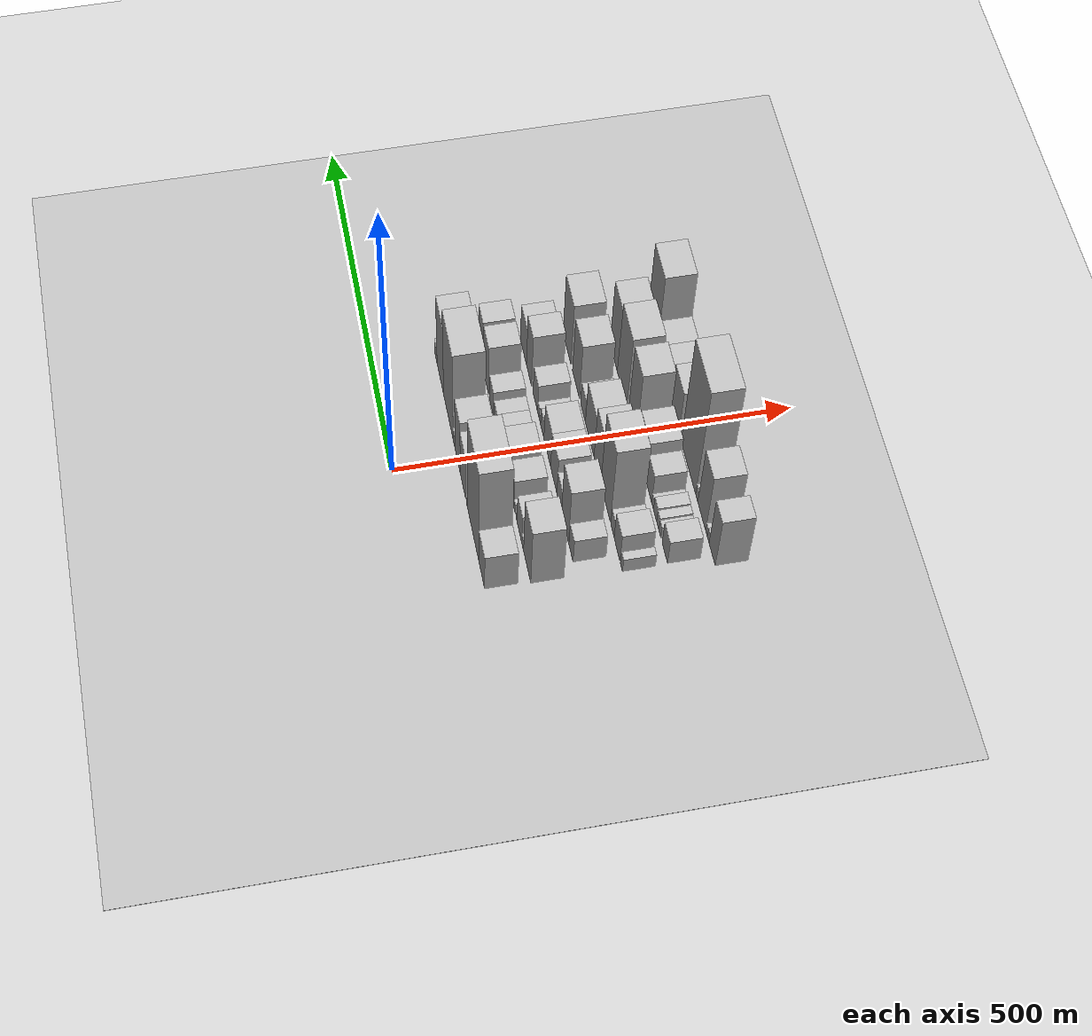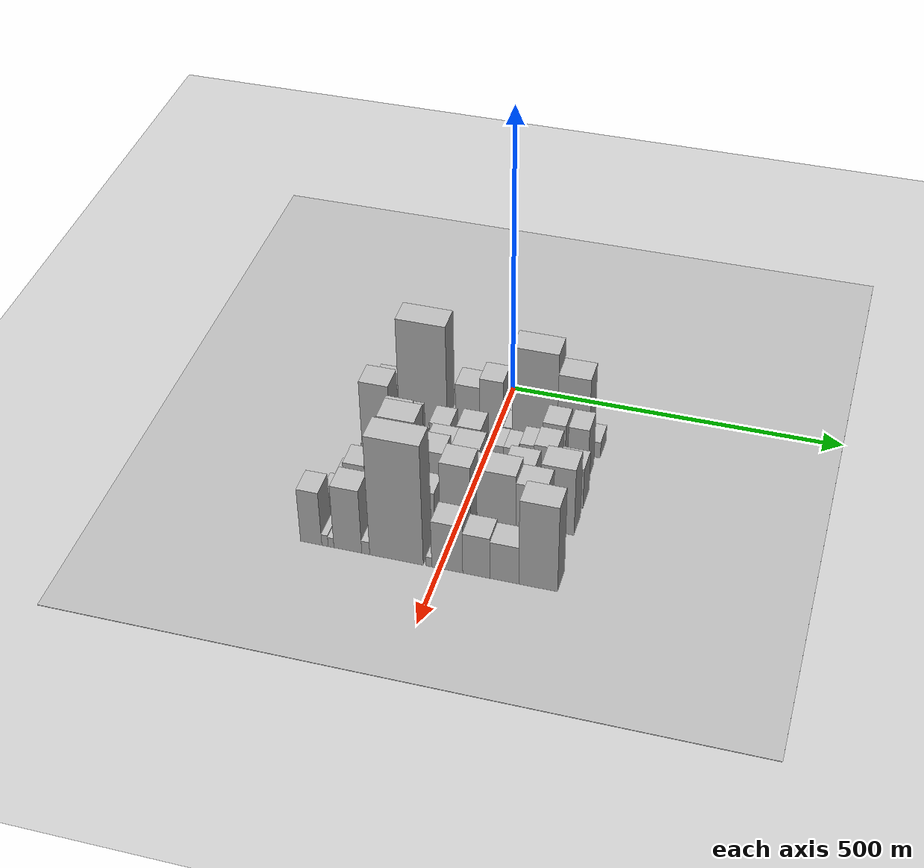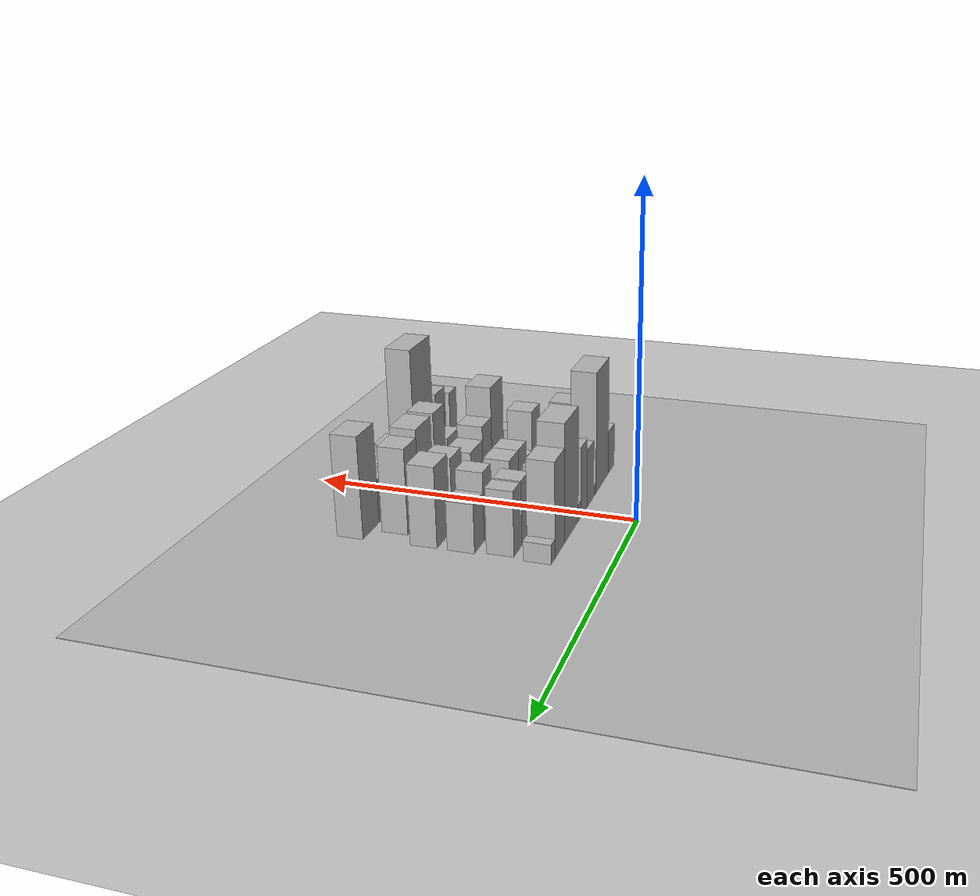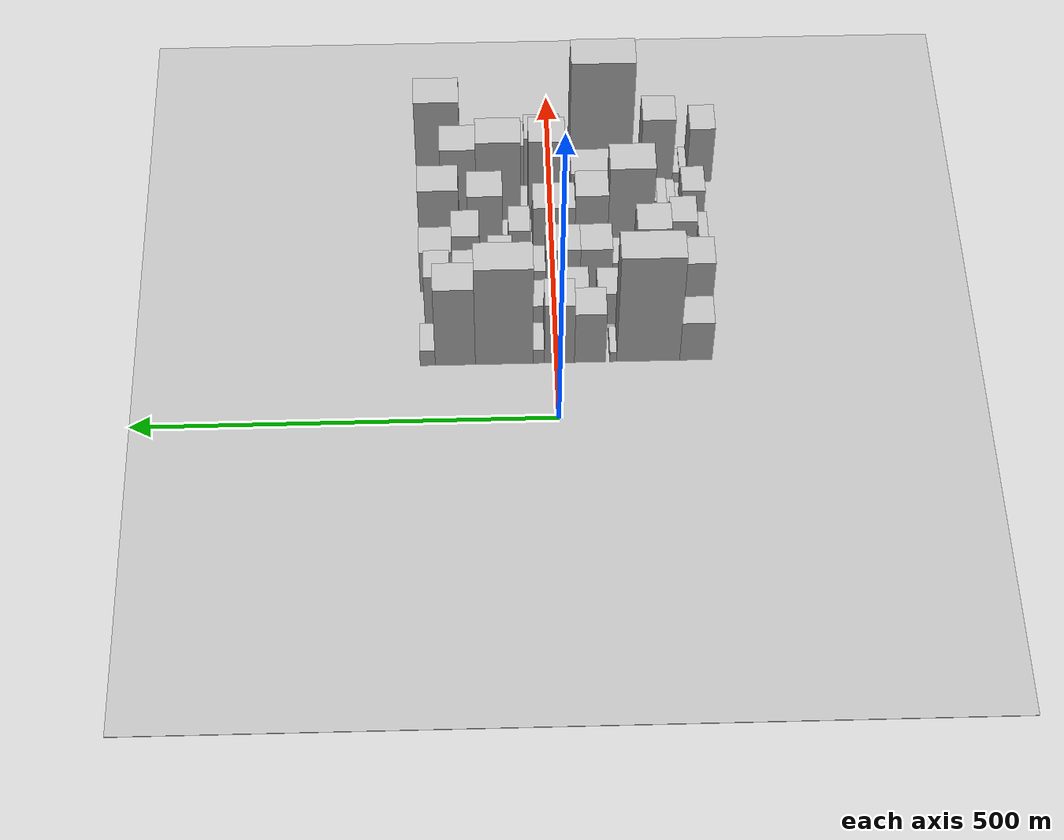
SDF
<sdf version="1.6">
 <world name="default">
  <include><name>ground_plane_1</name><uri>model://HANNAS_ground_plane</uri></include>
  <include>
   <name>ground_plane_2</name>
   <uri>model://HANNAS_ground_plane</uri>
   <pose>100 0 0  0 0 0</pose>
  </include>
  <model name="building_20">
   <static>1</static>
   <pose>100.0000 -163.5887 0 0.000000 0.000000 0.000000</pose>
   <link name="link">
    <pose>0 0 36.00 0 0 0</pose>
    <collision name="collision"><geometry><box><size>40.0000 38.2750 72.0000</size></box></geometry></collision>
    <visual name="visual">
     <cast_shadows>0</cast_shadows>
     <geometry><box><size>40.0000 38.2750 72.0000</size></box></geometry>
     <material>
      <script>
       <uri>model://HANNAS_wall/materials/scripts</uri>
       <uri>model://HANNAS_wall/materials/textures</uri>
       <name>vrc/HANNAS_wall</name>
      </script>
     </material>
    </visual>
   </link>
  </model>
  <model name="building_21">
   <static>1</static>
   <pose>100.0000 -107.1721 0 0.000000 0.000000 0.000000</pose>
   <link name="link">
    <pose>0 0 97.50 0 0 0</pose>
    <collision name="collision"><geometry><box><size>40.0000 74.5581 195.0000</size></box></geometry></collision>
    <visual name="visual">
     <cast_shadows>0</cast_shadows>
     <geometry><box><size>40.0000 74.5581 195.0000</size></box></geometry>
     <material>
      <script>
       <uri>model://HANNAS_wall/materials/scripts</uri>
       <uri>model://HANNAS_wall/materials/textures</uri>
       <name>vrc/HANNAS_wall</name>
      </script>
     </material>
    </visual>
   </link>
  </model>
  <model name="building_22">
   <static>1</static>
   <pose>100.0000 -65.8236 0 0.000000 0.000000 0.000000</pose>
   <link name="link">
    <pose>0 0 9.00 0 0 0</pose>
    <collision name="collision"><geometry><box><size>40.0000 8.1389 18.0000</size></box></geometry></collision>
    <visual name="visual">
     <cast_shadows>0</cast_shadows>
     <geometry><box><size>40.0000 8.1389 18.0000</size></box></geometry>
     <material>
      <script>
       <uri>model://HANNAS_wall/materials/scripts</uri>
       <uri>model://HANNAS_wall/materials/textures</uri>
       <name>vrc/HANNAS_wall</name>
      </script>
     </material>
    </visual>
   </link>
  </model>
  <model name="building_23">
   <static>1</static>
   <pose>100.0000 -38.3440 0 0.000000 0.000000 0.000000</pose>
   <link name="link">
    <pose>0 0 46.50 0 0 0</pose>
    <collision name="collision"><geometry><box><size>40.0000 36.8203 93.0000</size></box></geometry></collision>
    <visual name="visual">
     <cast_shadows>0</cast_shadows>
     <geometry><box><size>40.0000 36.8203 93.0000</size></box></geometry>
     <material>
      <script>
       <uri>model://HANNAS_wall/materials/scripts</uri>
       <uri>model://HANNAS_wall/materials/textures</uri>
       <name>vrc/HANNAS_wall</name>
      </script>
     </material>
    </visual>
   </link>
  </model>
  <model name="building_24">
   <static>1</static>
   <pose>100.0000 -2.2294 0 0.000000 0.000000 0.000000</pose>
   <link name="link">
    <pose>0 0 55.50 0 0 0</pose>
    <collision name="collision"><geometry><box><size>40.0000 35.4090 111.0000</size></box></geometry></collision>
    <visual name="visual">
     <cast_shadows>0</cast_shadows>
     <geometry><box><size>40.0000 35.4090 111.0000</size></box></geometry>
     <material>
      <script>
       <uri>model://HANNAS_wall/materials/scripts</uri>
       <uri>model://HANNAS_wall/materials/textures</uri>
       <name>vrc/HANNAS_wall</name>
      </script>
     </material>
    </visual>
   </link>
  </model>
  <model name="building_25">
   <static>1</static>
   <pose>100.0000 22.1631 0 0.000000 0.000000 0.000000</pose>
   <link name="link">
    <pose>0 0 13.50 0 0 0</pose>
    <collision name="collision"><geometry><box><size>40.0000 13.3759 27.0000</size></box></geometry></collision>
    <visual name="visual">
     <cast_shadows>0</cast_shadows>
     <geometry><box><size>40.0000 13.3759 27.0000</size></box></geometry>
     <material>
      <script>
       <uri>model://HANNAS_wall/materials/scripts</uri>
       <uri>model://HANNAS_wall/materials/textures</uri>
       <name>vrc/HANNAS_wall</name>
      </script>
     </material>
    </visual>
   </link>
  </model>
  <model name="building_26">
   <static>1</static>
   <pose>100.0000 62.9085 0 0.000000 0.000000 0.000000</pose>
   <link name="link">
    <pose>0 0 90.00 0 0 0</pose>
    <collision name="collision"><geometry><box><size>40.0000 68.1148 180.0000</size></box></geometry></collision>
    <visual name="visual">
     <cast_shadows>0</cast_shadows>
     <geometry><box><size>40.0000 68.1148 180.0000</size></box></geometry>
     <material>
      <script>
       <uri>model://HANNAS_wall/materials/scripts</uri>
       <uri>model://HANNAS_wall/materials/textures</uri>
       <name>vrc/HANNAS_wall</name>
      </script>
     </material>
    </visual>
   </link>
  </model>
  <model name="building_27">
   <static>1</static>
   <pose>100.0000 120.6021 0 0.000000 0.000000 0.000000</pose>
   <link name="link">
    <pose>0 0 72.00 0 0 0</pose>
    <collision name="collision"><geometry><box><size>40.0000 47.2725 144.0000</size></box></geometry></collision>
    <visual name="visual">
     <cast_shadows>0</cast_shadows>
     <geometry><box><size>40.0000 47.2725 144.0000</size></box></geometry>
     <material>
      <script>
       <uri>model://HANNAS_wall/materials/scripts</uri>
       <uri>model://HANNAS_wall/materials/textures</uri>
       <name>vrc/HANNAS_wall</name>
      </script>
     </material>
    </visual>
   </link>
  </model>
  <model name="building_28">
   <static>1</static>
   <pose>100.0000 153.1392 0 0.000000 0.000000 0.000000</pose>
   <link name="link">
    <pose>0 0 15.00 0 0 0</pose>
    <collision name="collision"><geometry><box><size>40.0000 17.8015 30.0000</size></box></geometry></collision>
    <visual name="visual">
     <cast_shadows>0</cast_shadows>
     <geometry><box><size>40.0000 17.8015 30.0000</size></box></geometry>
     <material>
      <script>
       <uri>model://HANNAS_wall/materials/scripts</uri>
       <uri>model://HANNAS_wall/materials/textures</uri>
       <name>vrc/HANNAS_wall</name>
      </script>
     </material>
    </visual>
   </link>
  </model>
  <model name="building_67">
   <static>1</static>
   <pose>155.0000 -162.8504 0 0.000000 0.000000 0.000000</pose>
   <link name="link">
    <pose>0 0 57.00 0 0 0</pose>
    <collision name="collision"><geometry><box><size>40.0000 44.4076 114.0000</size></box></geometry></collision>
    <visual name="visual">
     <cast_shadows>0</cast_shadows>
     <geometry><box><size>40.0000 44.4076 114.0000</size></box></geometry>
     <material>
      <script>
       <uri>model://HANNAS_wall/materials/scripts</uri>
       <uri>model://HANNAS_wall/materials/textures</uri>
       <name>vrc/HANNAS_wall</name>
      </script>
     </material>
    </visual>
   </link>
  </model>
  <model name="building_68">
   <static>1</static>
   <pose>155.0000 -135.4830 0 0.000000 0.000000 0.000000</pose>
   <link name="link">
    <pose>0 0 12.00 0 0 0</pose>
    <collision name="collision"><geometry><box><size>40.0000 10.3273 24.0000</size></box></geometry></collision>
    <visual name="visual">
     <cast_shadows>0</cast_shadows>
     <geometry><box><size>40.0000 10.3273 24.0000</size></box></geometry>
     <material>
      <script>
       <uri>model://HANNAS_wall/materials/scripts</uri>
       <uri>model://HANNAS_wall/materials/textures</uri>
       <name>vrc/HANNAS_wall</name>
      </script>
     </material>
    </visual>
   </link>
  </model>
  <model name="building_69">
   <static>1</static>
   <pose>155.0000 -114.9470 0 0.000000 0.000000 0.000000</pose>
   <link name="link">
    <pose>0 0 30.00 0 0 0</pose>
    <collision name="collision"><geometry><box><size>40.0000 30.7445 60.0000</size></box></geometry></collision>
    <visual name="visual">
     <cast_shadows>0</cast_shadows>
     <geometry><box><size>40.0000 30.7445 60.0000</size></box></geometry>
     <material>
      <script>
       <uri>model://HANNAS_wall/materials/scripts</uri>
       <uri>model://HANNAS_wall/materials/textures</uri>
       <name>vrc/HANNAS_wall</name>
      </script>
     </material>
    </visual>
   </link>
  </model>
  <model name="building_70">
   <static>1</static>
   <pose>155.0000 -96.1963 0 0.000000 0.000000 0.000000</pose>
   <link name="link">
    <pose>0 0 7.50 0 0 0</pose>
    <collision name="collision"><geometry><box><size>40.0000 6.7569 15.0000</size></box></geometry></collision>
    <visual name="visual">
     <cast_shadows>0</cast_shadows>
     <geometry><box><size>40.0000 6.7569 15.0000</size></box></geometry>
     <material>
      <script>
       <uri>model://HANNAS_wall/materials/scripts</uri>
       <uri>model://HANNAS_wall/materials/textures</uri>
       <name>vrc/HANNAS_wall</name>
      </script>
     </material>
    </visual>
   </link>
  </model>
  <model name="building_71">
   <static>1</static>
   <pose>155.0000 -84.5600 0 0.000000 0.000000 0.000000</pose>
   <link name="link">
    <pose>0 0 10.50 0 0 0</pose>
    <collision name="collision"><geometry><box><size>40.0000 8.5157 21.0000</size></box></geometry></collision>
    <visual name="visual">
     <cast_shadows>0</cast_shadows>
     <geometry><box><size>40.0000 8.5157 21.0000</size></box></geometry>
     <material>
      <script>
       <uri>model://HANNAS_wall/materials/scripts</uri>
       <uri>model://HANNAS_wall/materials/textures</uri>
       <name>vrc/HANNAS_wall</name>
      </script>
     </material>
    </visual>
   </link>
  </model>
  <model name="building_72">
   <static>1</static>
   <pose>155.0000 -64.7065 0 0.000000 0.000000 0.000000</pose>
   <link name="link">
    <pose>0 0 30.00 0 0 0</pose>
    <collision name="collision"><geometry><box><size>40.0000 31.1914 60.0000</size></box></geometry></collision>
    <visual name="visual">
     <cast_shadows>0</cast_shadows>
     <geometry><box><size>40.0000 31.1914 60.0000</size></box></geometry>
     <material>
      <script>
       <uri>model://HANNAS_wall/materials/scripts</uri>
       <uri>model://HANNAS_wall/materials/textures</uri>
       <name>vrc/HANNAS_wall</name>
      </script>
     </material>
    </visual>
   </link>
  </model>
  <model name="building_73">
   <static>1</static>
   <pose>155.0000 -20.9212 0 0.000000 0.000000 0.000000</pose>
   <link name="link">
    <pose>0 0 31.50 0 0 0</pose>
    <collision name="collision"><geometry><box><size>40.0000 36.3790 63.0000</size></box></geometry></collision>
    <visual name="visual">
     <cast_shadows>0</cast_shadows>
     <geometry><box><size>40.0000 36.3790 63.0000</size></box></geometry>
     <material>
      <script>
       <uri>model://HANNAS_wall/materials/scripts</uri>
       <uri>model://HANNAS_wall/materials/textures</uri>
       <name>vrc/HANNAS_wall</name>
      </script>
     </material>
    </visual>
   </link>
  </model>
  <model name="building_74">
   <static>1</static>
   <pose>155.0000 5.2433 0 0.000000 0.000000 0.000000</pose>
   <link name="link">
    <pose>0 0 9.00 0 0 0</pose>
    <collision name="collision"><geometry><box><size>40.0000 7.9501 18.0000</size></box></geometry></collision>
    <visual name="visual">
     <cast_shadows>0</cast_shadows>
     <geometry><box><size>40.0000 7.9501 18.0000</size></box></geometry>
     <material>
      <script>
       <uri>model://HANNAS_wall/materials/scripts</uri>
       <uri>model://HANNAS_wall/materials/textures</uri>
       <name>vrc/HANNAS_wall</name>
      </script>
     </material>
    </visual>
   </link>
  </model>
  <model name="building_75">
   <static>1</static>
   <pose>155.0000 20.0785 0 0.000000 0.000000 0.000000</pose>
   <link name="link">
    <pose>0 0 19.50 0 0 0</pose>
    <collision name="collision"><geometry><box><size>40.0000 21.7204 39.0000</size></box></geometry></collision>
    <visual name="visual">
     <cast_shadows>0</cast_shadows>
     <geometry><box><size>40.0000 21.7204 39.0000</size></box></geometry>
     <material>
      <script>
       <uri>model://HANNAS_wall/materials/scripts</uri>
       <uri>model://HANNAS_wall/materials/textures</uri>
       <name>vrc/HANNAS_wall</name>
      </script>
     </material>
    </visual>
   </link>
  </model>
  <model name="building_76">
   <static>1</static>
   <pose>155.0000 41.2319 0 0.000000 0.000000 0.000000</pose>
   <link name="link">
    <pose>0 0 19.50 0 0 0</pose>
    <collision name="collision"><geometry><box><size>40.0000 20.5862 39.0000</size></box></geometry></collision>
    <visual name="visual">
     <cast_shadows>0</cast_shadows>
     <geometry><box><size>40.0000 20.5862 39.0000</size></box></geometry>
     <material>
      <script>
       <uri>model://HANNAS_wall/materials/scripts</uri>
       <uri>model://HANNAS_wall/materials/textures</uri>
       <name>vrc/HANNAS_wall</name>
      </script>
     </material>
    </visual>
   </link>
  </model>
  <model name="building_77">
   <static>1</static>
   <pose>155.0000 68.1209 0 0.000000 0.000000 0.000000</pose>
   <link name="link">
    <pose>0 0 25.50 0 0 0</pose>
    <collision name="collision"><geometry><box><size>40.0000 27.1919 51.0000</size></box></geometry></collision>
    <visual name="visual">
     <cast_shadows>0</cast_shadows>
     <geometry><box><size>40.0000 27.1919 51.0000</size></box></geometry>
     <material>
      <script>
       <uri>model://HANNAS_wall/materials/scripts</uri>
       <uri>model://HANNAS_wall/materials/textures</uri>
       <name>vrc/HANNAS_wall</name>
      </script>
     </material>
    </visual>
   </link>
  </model>
  <model name="building_78">
   <static>1</static>
   <pose>155.0000 104.6948 0 0.000000 0.000000 0.000000</pose>
   <link name="link">
    <pose>0 0 49.50 0 0 0</pose>
    <collision name="collision"><geometry><box><size>40.0000 33.9558 99.0000</size></box></geometry></collision>
    <visual name="visual">
     <cast_shadows>0</cast_shadows>
     <geometry><box><size>40.0000 33.9558 99.0000</size></box></geometry>
     <material>
      <script>
       <uri>model://HANNAS_wall/materials/scripts</uri>
       <uri>model://HANNAS_wall/materials/textures</uri>
       <name>vrc/HANNAS_wall</name>
      </script>
     </material>
    </visual>
   </link>
  </model>
  <model name="building_79">
   <static>1</static>
   <pose>155.0000 140.7612 0 0.000000 0.000000 0.000000</pose>
   <link name="link">
    <pose>0 0 49.50 0 0 0</pose>
    <collision name="collision"><geometry><box><size>40.0000 30.1770 99.0000</size></box></geometry></collision>
    <visual name="visual">
     <cast_shadows>0</cast_shadows>
     <geometry><box><size>40.0000 30.1770 99.0000</size></box></geometry>
     <material>
      <script>
       <uri>model://HANNAS_wall/materials/scripts</uri>
       <uri>model://HANNAS_wall/materials/textures</uri>
       <name>vrc/HANNAS_wall</name>
      </script>
     </material>
    </visual>
   </link>
  </model>
  <model name="building_123">
   <static>1</static>
   <pose>210.0000 -153.5388 0 0.000000 0.000000 0.000000</pose>
   <link name="link">
    <pose>0 0 24.00 0 0 0</pose>
    <collision name="collision"><geometry><box><size>40.0000 24.6475 48.0000</size></box></geometry></collision>
    <visual name="visual">
     <cast_shadows>0</cast_shadows>
     <geometry><box><size>40.0000 24.6475 48.0000</size></box></geometry>
     <material>
      <script>
       <uri>model://HANNAS_wall/materials/scripts</uri>
       <uri>model://HANNAS_wall/materials/textures</uri>
       <name>vrc/HANNAS_wall</name>
      </script>
     </material>
    </visual>
   </link>
  </model>
  <model name="building_124">
   <static>1</static>
   <pose>210.0000 -117.7677 0 0.000000 0.000000 0.000000</pose>
   <link name="link">
    <pose>0 0 55.50 0 0 0</pose>
    <collision name="collision"><geometry><box><size>40.0000 40.8947 111.0000</size></box></geometry></collision>
    <visual name="visual">
     <cast_shadows>0</cast_shadows>
     <geometry><box><size>40.0000 40.8947 111.0000</size></box></geometry>
     <material>
      <script>
       <uri>model://HANNAS_wall/materials/scripts</uri>
       <uri>model://HANNAS_wall/materials/textures</uri>
       <name>vrc/HANNAS_wall</name>
      </script>
     </material>
    </visual>
   </link>
  </model>
  <model name="building_125">
   <static>1</static>
   <pose>210.0000 -83.2068 0 0.000000 0.000000 0.000000</pose>
   <link name="link">
    <pose>0 0 24.00 0 0 0</pose>
    <collision name="collision"><geometry><box><size>40.0000 28.2272 48.0000</size></box></geometry></collision>
    <visual name="visual">
     <cast_shadows>0</cast_shadows>
     <geometry><box><size>40.0000 28.2272 48.0000</size></box></geometry>
     <material>
      <script>
       <uri>model://HANNAS_wall/materials/scripts</uri>
       <uri>model://HANNAS_wall/materials/textures</uri>
       <name>vrc/HANNAS_wall</name>
      </script>
     </material>
    </visual>
   </link>
  </model>
  <model name="building_126">
   <static>1</static>
   <pose>210.0000 -49.9985 0 0.000000 0.000000 0.000000</pose>
   <link name="link">
    <pose>0 0 37.50 0 0 0</pose>
    <collision name="collision"><geometry><box><size>40.0000 38.1895 75.0000</size></box></geometry></collision>
    <visual name="visual">
     <cast_shadows>0</cast_shadows>
     <geometry><box><size>40.0000 38.1895 75.0000</size></box></geometry>
     <material>
      <script>
       <uri>model://HANNAS_wall/materials/scripts</uri>
       <uri>model://HANNAS_wall/materials/textures</uri>
       <name>vrc/HANNAS_wall</name>
      </script>
     </material>
    </visual>
   </link>
  </model>
  <model name="building_127">
   <static>1</static>
   <pose>210.0000 -10.1352 0 0.000000 0.000000 0.000000</pose>
   <link name="link">
    <pose>0 0 37.50 0 0 0</pose>
    <collision name="collision"><geometry><box><size>40.0000 41.5371 75.0000</size></box></geometry></collision>
    <visual name="visual">
     <cast_shadows>0</cast_shadows>
     <geometry><box><size>40.0000 41.5371 75.0000</size></box></geometry>
     <material>
      <script>
       <uri>model://HANNAS_wall/materials/scripts</uri>
       <uri>model://HANNAS_wall/materials/textures</uri>
       <name>vrc/HANNAS_wall</name>
      </script>
     </material>
    </visual>
   </link>
  </model>
  <model name="building_128">
   <static>1</static>
   <pose>210.0000 21.1518 0 0.000000 0.000000 0.000000</pose>
   <link name="link">
    <pose>0 0 18.00 0 0 0</pose>
    <collision name="collision"><geometry><box><size>40.0000 21.0369 36.0000</size></box></geometry></collision>
    <visual name="visual">
     <cast_shadows>0</cast_shadows>
     <geometry><box><size>40.0000 21.0369 36.0000</size></box></geometry>
     <material>
      <script>
       <uri>model://HANNAS_wall/materials/scripts</uri>
       <uri>model://HANNAS_wall/materials/textures</uri>
       <name>vrc/HANNAS_wall</name>
      </script>
     </material>
    </visual>
   </link>
  </model>
  <model name="building_129">
   <static>1</static>
   <pose>210.0000 35.6477 0 0.000000 0.000000 0.000000</pose>
   <link name="link">
    <pose>0 0 9.00 0 0 0</pose>
    <collision name="collision"><geometry><box><size>40.0000 7.9549 18.0000</size></box></geometry></collision>
    <visual name="visual">
     <cast_shadows>0</cast_shadows>
     <geometry><box><size>40.0000 7.9549 18.0000</size></box></geometry>
     <material>
      <script>
       <uri>model://HANNAS_wall/materials/scripts</uri>
       <uri>model://HANNAS_wall/materials/textures</uri>
       <name>vrc/HANNAS_wall</name>
      </script>
     </material>
    </visual>
   </link>
  </model>
  <model name="building_130">
   <static>1</static>
   <pose>210.0000 44.7991 0 0.000000 0.000000 0.000000</pose>
   <link name="link">
    <pose>0 0 12.00 0 0 0</pose>
    <collision name="collision"><geometry><box><size>40.0000 10.3479 24.0000</size></box></geometry></collision>
    <visual name="visual">
     <cast_shadows>0</cast_shadows>
     <geometry><box><size>40.0000 10.3479 24.0000</size></box></geometry>
     <material>
      <script>
       <uri>model://HANNAS_wall/materials/scripts</uri>
       <uri>model://HANNAS_wall/materials/textures</uri>
       <name>vrc/HANNAS_wall</name>
      </script>
     </material>
    </visual>
   </link>
  </model>
  <model name="building_131">
   <static>1</static>
   <pose>210.0000 64.6884 0 0.000000 0.000000 0.000000</pose>
   <link name="link">
    <pose>0 0 28.50 0 0 0</pose>
    <collision name="collision"><geometry><box><size>40.0000 29.4306 57.0000</size></box></geometry></collision>
    <visual name="visual">
     <cast_shadows>0</cast_shadows>
     <geometry><box><size>40.0000 29.4306 57.0000</size></box></geometry>
     <material>
      <script>
       <uri>model://HANNAS_wall/materials/scripts</uri>
       <uri>model://HANNAS_wall/materials/textures</uri>
       <name>vrc/HANNAS_wall</name>
      </script>
     </material>
    </visual>
   </link>
  </model>
  <model name="building_132">
   <static>1</static>
   <pose>210.0000 105.9684 0 0.000000 0.000000 0.000000</pose>
   <link name="link">
    <pose>0 0 52.50 0 0 0</pose>
    <collision name="collision"><geometry><box><size>40.0000 33.1295 105.0000</size></box></geometry></collision>
    <visual name="visual">
     <cast_shadows>0</cast_shadows>
     <geometry><box><size>40.0000 33.1295 105.0000</size></box></geometry>
     <material>
      <script>
       <uri>model://HANNAS_wall/materials/scripts</uri>
       <uri>model://HANNAS_wall/materials/textures</uri>
       <name>vrc/HANNAS_wall</name>
      </script>
     </material>
    </visual>
   </link>
  </model>
  <model name="building_133">
   <static>1</static>
   <pose>210.0000 142.0532 0 0.000000 0.000000 0.000000</pose>
   <link name="link">
    <pose>0 0 37.50 0 0 0</pose>
    <collision name="collision"><geometry><box><size>40.0000 39.0401 75.0000</size></box></geometry></collision>
    <visual name="visual">
     <cast_shadows>0</cast_shadows>
     <geometry><box><size>40.0000 39.0401 75.0000</size></box></geometry>
     <material>
      <script>
       <uri>model://HANNAS_wall/materials/scripts</uri>
       <uri>model://HANNAS_wall/materials/textures</uri>
       <name>vrc/HANNAS_wall</name>
      </script>
     </material>
    </visual>
   </link>
  </model>
  <model name="building_174">
   <static>1</static>
   <pose>265.0000 -183.4094 0 0.000000 0.000000 0.000000</pose>
   <link name="link">
    <pose>0 0 13.50 0 0 0</pose>
    <collision name="collision"><geometry><box><size>40.0000 11.4954 27.0000</size></box></geometry></collision>
    <visual name="visual">
     <cast_shadows>0</cast_shadows>
     <geometry><box><size>40.0000 11.4954 27.0000</size></box></geometry>
     <material>
      <script>
       <uri>model://HANNAS_wall/materials/scripts</uri>
       <uri>model://HANNAS_wall/materials/textures</uri>
       <name>vrc/HANNAS_wall</name>
      </script>
     </material>
    </visual>
   </link>
  </model>
  <model name="building_175">
   <static>1</static>
   <pose>265.0000 -158.5495 0 0.000000 0.000000 0.000000</pose>
   <link name="link">
    <pose>0 0 28.50 0 0 0</pose>
    <collision name="collision"><geometry><box><size>40.0000 32.2244 57.0000</size></box></geometry></collision>
    <visual name="visual">
     <cast_shadows>0</cast_shadows>
     <geometry><box><size>40.0000 32.2244 57.0000</size></box></geometry>
     <material>
      <script>
       <uri>model://HANNAS_wall/materials/scripts</uri>
       <uri>model://HANNAS_wall/materials/textures</uri>
       <name>vrc/HANNAS_wall</name>
      </script>
     </material>
    </visual>
   </link>
  </model>
  <model name="building_176">
   <static>1</static>
   <pose>265.0000 -132.9530 0 0.000000 0.000000 0.000000</pose>
   <link name="link">
    <pose>0 0 18.00 0 0 0</pose>
    <collision name="collision"><geometry><box><size>40.0000 18.9686 36.0000</size></box></geometry></collision>
    <visual name="visual">
     <cast_shadows>0</cast_shadows>
     <geometry><box><size>40.0000 18.9686 36.0000</size></box></geometry>
     <material>
      <script>
       <uri>model://HANNAS_wall/materials/scripts</uri>
       <uri>model://HANNAS_wall/materials/textures</uri>
       <name>vrc/HANNAS_wall</name>
      </script>
     </material>
    </visual>
   </link>
  </model>
  <model name="building_177">
   <static>1</static>
   <pose>265.0000 -93.3494 0 0.000000 0.000000 0.000000</pose>
   <link name="link">
    <pose>0 0 78.00 0 0 0</pose>
    <collision name="collision"><geometry><box><size>40.0000 54.2386 156.0000</size></box></geometry></collision>
    <visual name="visual">
     <cast_shadows>0</cast_shadows>
     <geometry><box><size>40.0000 54.2386 156.0000</size></box></geometry>
     <material>
      <script>
       <uri>model://HANNAS_wall/materials/scripts</uri>
       <uri>model://HANNAS_wall/materials/textures</uri>
       <name>vrc/HANNAS_wall</name>
      </script>
     </material>
    </visual>
   </link>
  </model>
  <model name="building_178">
   <static>1</static>
   <pose>265.0000 -46.3522 0 0.000000 0.000000 0.000000</pose>
   <link name="link">
    <pose>0 0 54.00 0 0 0</pose>
    <collision name="collision"><geometry><box><size>40.0000 39.7559 108.0000</size></box></geometry></collision>
    <visual name="visual">
     <cast_shadows>0</cast_shadows>
     <geometry><box><size>40.0000 39.7559 108.0000</size></box></geometry>
     <material>
      <script>
       <uri>model://HANNAS_wall/materials/scripts</uri>
       <uri>model://HANNAS_wall/materials/textures</uri>
       <name>vrc/HANNAS_wall</name>
      </script>
     </material>
    </visual>
   </link>
  </model>
  <model name="building_179">
   <static>1</static>
   <pose>265.0000 -1.0252 0 0.000000 0.000000 0.000000</pose>
   <link name="link">
    <pose>0 0 43.50 0 0 0</pose>
    <collision name="collision"><geometry><box><size>40.0000 50.8981 87.0000</size></box></geometry></collision>
    <visual name="visual">
     <cast_shadows>0</cast_shadows>
     <geometry><box><size>40.0000 50.8981 87.0000</size></box></geometry>
     <material>
      <script>
       <uri>model://HANNAS_wall/materials/scripts</uri>
       <uri>model://HANNAS_wall/materials/textures</uri>
       <name>vrc/HANNAS_wall</name>
      </script>
     </material>
    </visual>
   </link>
  </model>
  <model name="building_180">
   <static>1</static>
   <pose>265.0000 40.6143 0 0.000000 0.000000 0.000000</pose>
   <link name="link">
    <pose>0 0 22.50 0 0 0</pose>
    <collision name="collision"><geometry><box><size>40.0000 26.3809 45.0000</size></box></geometry></collision>
    <visual name="visual">
     <cast_shadows>0</cast_shadows>
     <geometry><box><size>40.0000 26.3809 45.0000</size></box></geometry>
     <material>
      <script>
       <uri>model://HANNAS_wall/materials/scripts</uri>
       <uri>model://HANNAS_wall/materials/textures</uri>
       <name>vrc/HANNAS_wall</name>
      </script>
     </material>
    </visual>
   </link>
  </model>
  <model name="building_181">
   <static>1</static>
   <pose>265.0000 82.0659 0 0.000000 0.000000 0.000000</pose>
   <link name="link">
    <pose>0 0 55.50 0 0 0</pose>
    <collision name="collision"><geometry><box><size>40.0000 42.5222 111.0000</size></box></geometry></collision>
    <visual name="visual">
     <cast_shadows>0</cast_shadows>
     <geometry><box><size>40.0000 42.5222 111.0000</size></box></geometry>
     <material>
      <script>
       <uri>model://HANNAS_wall/materials/scripts</uri>
       <uri>model://HANNAS_wall/materials/textures</uri>
       <name>vrc/HANNAS_wall</name>
      </script>
     </material>
    </visual>
   </link>
  </model>
  <model name="building_182">
   <static>1</static>
   <pose>265.0000 137.5683 0 0.000000 0.000000 0.000000</pose>
   <link name="link">
    <pose>0 0 61.50 0 0 0</pose>
    <collision name="collision"><geometry><box><size>40.0000 48.4827 123.0000</size></box></geometry></collision>
    <visual name="visual">
     <cast_shadows>0</cast_shadows>
     <geometry><box><size>40.0000 48.4827 123.0000</size></box></geometry>
     <material>
      <script>
       <uri>model://HANNAS_wall/materials/scripts</uri>
       <uri>model://HANNAS_wall/materials/textures</uri>
       <name>vrc/HANNAS_wall</name>
      </script>
     </material>
    </visual>
   </link>
  </model>
  <model name="building_227">
   <static>1</static>
   <pose>320.0000 -173.8043 0 0.000000 0.000000 0.000000</pose>
   <link name="link">
    <pose>0 0 24.00 0 0 0</pose>
    <collision name="collision"><geometry><box><size>40.0000 28.4322 48.0000</size></box></geometry></collision>
    <visual name="visual">
     <cast_shadows>0</cast_shadows>
     <geometry><box><size>40.0000 28.4322 48.0000</size></box></geometry>
     <material>
      <script>
       <uri>model://HANNAS_wall/materials/scripts</uri>
       <uri>model://HANNAS_wall/materials/textures</uri>
       <name>vrc/HANNAS_wall</name>
      </script>
     </material>
    </visual>
   </link>
  </model>
  <model name="building_228">
   <static>1</static>
   <pose>320.0000 -147.2579 0 0.000000 0.000000 0.000000</pose>
   <link name="link">
    <pose>0 0 12.00 0 0 0</pose>
    <collision name="collision"><geometry><box><size>40.0000 10.6607 24.0000</size></box></geometry></collision>
    <visual name="visual">
     <cast_shadows>0</cast_shadows>
     <geometry><box><size>40.0000 10.6607 24.0000</size></box></geometry>
     <material>
      <script>
       <uri>model://HANNAS_wall/materials/scripts</uri>
       <uri>model://HANNAS_wall/materials/textures</uri>
       <name>vrc/HANNAS_wall</name>
      </script>
     </material>
    </visual>
   </link>
  </model>
  <model name="building_229">
   <static>1</static>
   <pose>320.0000 -135.8293 0 0.000000 0.000000 0.000000</pose>
   <link name="link">
    <pose>0 0 13.50 0 0 0</pose>
    <collision name="collision"><geometry><box><size>40.0000 12.1966 27.0000</size></box></geometry></collision>
    <visual name="visual">
     <cast_shadows>0</cast_shadows>
     <geometry><box><size>40.0000 12.1966 27.0000</size></box></geometry>
     <material>
      <script>
       <uri>model://HANNAS_wall/materials/scripts</uri>
       <uri>model://HANNAS_wall/materials/textures</uri>
       <name>vrc/HANNAS_wall</name>
      </script>
     </material>
    </visual>
   </link>
  </model>
  <model name="building_230">
   <static>1</static>
   <pose>320.0000 -121.1791 0 0.000000 0.000000 0.000000</pose>
   <link name="link">
    <pose>0 0 15.00 0 0 0</pose>
    <collision name="collision"><geometry><box><size>40.0000 17.1039 30.0000</size></box></geometry></collision>
    <visual name="visual">
     <cast_shadows>0</cast_shadows>
     <geometry><box><size>40.0000 17.1039 30.0000</size></box></geometry>
     <material>
      <script>
       <uri>model://HANNAS_wall/materials/scripts</uri>
       <uri>model://HANNAS_wall/materials/textures</uri>
       <name>vrc/HANNAS_wall</name>
      </script>
     </material>
    </visual>
   </link>
  </model>
  <model name="building_231">
   <static>1</static>
   <pose>320.0000 -107.5529 0 0.000000 0.000000 0.000000</pose>
   <link name="link">
    <pose>0 0 10.50 0 0 0</pose>
    <collision name="collision"><geometry><box><size>40.0000 10.1485 21.0000</size></box></geometry></collision>
    <visual name="visual">
     <cast_shadows>0</cast_shadows>
     <geometry><box><size>40.0000 10.1485 21.0000</size></box></geometry>
     <material>
      <script>
       <uri>model://HANNAS_wall/materials/scripts</uri>
       <uri>model://HANNAS_wall/materials/textures</uri>
       <name>vrc/HANNAS_wall</name>
      </script>
     </material>
    </visual>
   </link>
  </model>
  <model name="building_232">
   <static>1</static>
   <pose>320.0000 -87.2194 0 0.000000 0.000000 0.000000</pose>
   <link name="link">
    <pose>0 0 30.00 0 0 0</pose>
    <collision name="collision"><geometry><box><size>40.0000 30.5185 60.0000</size></box></geometry></collision>
    <visual name="visual">
     <cast_shadows>0</cast_shadows>
     <geometry><box><size>40.0000 30.5185 60.0000</size></box></geometry>
     <material>
      <script>
       <uri>model://HANNAS_wall/materials/scripts</uri>
       <uri>model://HANNAS_wall/materials/textures</uri>
       <name>vrc/HANNAS_wall</name>
      </script>
     </material>
    </visual>
   </link>
  </model>
  <model name="building_233">
   <static>1</static>
   <pose>320.0000 -47.6377 0 0.000000 0.000000 0.000000</pose>
   <link name="link">
    <pose>0 0 42.00 0 0 0</pose>
    <collision name="collision"><geometry><box><size>40.0000 48.6450 84.0000</size></box></geometry></collision>
    <visual name="visual">
     <cast_shadows>0</cast_shadows>
     <geometry><box><size>40.0000 48.6450 84.0000</size></box></geometry>
     <material>
      <script>
       <uri>model://HANNAS_wall/materials/scripts</uri>
       <uri>model://HANNAS_wall/materials/textures</uri>
       <name>vrc/HANNAS_wall</name>
      </script>
     </material>
    </visual>
   </link>
  </model>
  <model name="building_234">
   <static>1</static>
   <pose>320.0000 6.5917 0 0.000000 0.000000 0.000000</pose>
   <link name="link">
    <pose>0 0 72.00 0 0 0</pose>
    <collision name="collision"><geometry><box><size>40.0000 43.8138 144.0000</size></box></geometry></collision>
    <visual name="visual">
     <cast_shadows>0</cast_shadows>
     <geometry><box><size>40.0000 43.8138 144.0000</size></box></geometry>
     <material>
      <script>
       <uri>model://HANNAS_wall/materials/scripts</uri>
       <uri>model://HANNAS_wall/materials/textures</uri>
       <name>vrc/HANNAS_wall</name>
      </script>
     </material>
    </visual>
   </link>
  </model>
  <model name="building_235">
   <static>1</static>
   <pose>320.0000 64.8345 0 0.000000 0.000000 0.000000</pose>
   <link name="link">
    <pose>0 0 72.00 0 0 0</pose>
    <collision name="collision"><geometry><box><size>40.0000 54.6718 144.0000</size></box></geometry></collision>
    <visual name="visual">
     <cast_shadows>0</cast_shadows>
     <geometry><box><size>40.0000 54.6718 144.0000</size></box></geometry>
     <material>
      <script>
       <uri>model://HANNAS_wall/materials/scripts</uri>
       <uri>model://HANNAS_wall/materials/textures</uri>
       <name>vrc/HANNAS_wall</name>
      </script>
     </material>
    </visual>
   </link>
  </model>
  <model name="building_236">
   <static>1</static>
   <pose>320.0000 113.6345 0 0.000000 0.000000 0.000000</pose>
   <link name="link">
    <pose>0 0 66.00 0 0 0</pose>
    <collision name="collision"><geometry><box><size>40.0000 42.9283 132.0000</size></box></geometry></collision>
    <visual name="visual">
     <cast_shadows>0</cast_shadows>
     <geometry><box><size>40.0000 42.9283 132.0000</size></box></geometry>
     <material>
      <script>
       <uri>model://HANNAS_wall/materials/scripts</uri>
       <uri>model://HANNAS_wall/materials/textures</uri>
       <name>vrc/HANNAS_wall</name>
      </script>
     </material>
    </visual>
   </link>
  </model>
  <model name="building_284">
   <static>1</static>
   <pose>375.0000 -185.5710 0 0.000000 0.000000 0.000000</pose>
   <link name="link">
    <pose>0 0 49.50 0 0 0</pose>
    <collision name="collision"><geometry><box><size>40.0000 31.0723 99.0000</size></box></geometry></collision>
    <visual name="visual">
     <cast_shadows>0</cast_shadows>
     <geometry><box><size>40.0000 31.0723 99.0000</size></box></geometry>
     <material>
      <script>
       <uri>model://HANNAS_wall/materials/scripts</uri>
       <uri>model://HANNAS_wall/materials/textures</uri>
       <name>vrc/HANNAS_wall</name>
      </script>
     </material>
    </visual>
   </link>
  </model>
  <model name="building_285">
   <static>1</static>
   <pose>375.0000 -165.4192 0 0.000000 0.000000 0.000000</pose>
   <link name="link">
    <pose>0 0 10.50 0 0 0</pose>
    <collision name="collision"><geometry><box><size>40.0000 9.2313 21.0000</size></box></geometry></collision>
    <visual name="visual">
     <cast_shadows>0</cast_shadows>
     <geometry><box><size>40.0000 9.2313 21.0000</size></box></geometry>
     <material>
      <script>
       <uri>model://HANNAS_wall/materials/scripts</uri>
       <uri>model://HANNAS_wall/materials/textures</uri>
       <name>vrc/HANNAS_wall</name>
      </script>
     </material>
    </visual>
   </link>
  </model>
  <model name="building_286">
   <static>1</static>
   <pose>375.0000 -156.6110 0 0.000000 0.000000 0.000000</pose>
   <link name="link">
    <pose>0 0 9.00 0 0 0</pose>
    <collision name="collision"><geometry><box><size>40.0000 8.3849 18.0000</size></box></geometry></collision>
    <visual name="visual">
     <cast_shadows>0</cast_shadows>
     <geometry><box><size>40.0000 8.3849 18.0000</size></box></geometry>
     <material>
      <script>
       <uri>model://HANNAS_wall/materials/scripts</uri>
       <uri>model://HANNAS_wall/materials/textures</uri>
       <name>vrc/HANNAS_wall</name>
      </script>
     </material>
    </visual>
   </link>
  </model>
  <model name="building_287">
   <static>1</static>
   <pose>375.0000 -132.1917 0 0.000000 0.000000 0.000000</pose>
   <link name="link">
    <pose>0 0 58.50 0 0 0</pose>
    <collision name="collision"><geometry><box><size>40.0000 40.4537 117.0000</size></box></geometry></collision>
    <visual name="visual">
     <cast_shadows>0</cast_shadows>
     <geometry><box><size>40.0000 40.4537 117.0000</size></box></geometry>
     <material>
      <script>
       <uri>model://HANNAS_wall/materials/scripts</uri>
       <uri>model://HANNAS_wall/materials/textures</uri>
       <name>vrc/HANNAS_wall</name>
      </script>
     </material>
    </visual>
   </link>
  </model>
  <model name="building_288">
   <static>1</static>
   <pose>375.0000 -106.2116 0 0.000000 0.000000 0.000000</pose>
   <link name="link">
    <pose>0 0 12.00 0 0 0</pose>
    <collision name="collision"><geometry><box><size>40.0000 11.5066 24.0000</size></box></geometry></collision>
    <visual name="visual">
     <cast_shadows>0</cast_shadows>
     <geometry><box><size>40.0000 11.5066 24.0000</size></box></geometry>
     <material>
      <script>
       <uri>model://HANNAS_wall/materials/scripts</uri>
       <uri>model://HANNAS_wall/materials/textures</uri>
       <name>vrc/HANNAS_wall</name>
      </script>
     </material>
    </visual>
   </link>
  </model>
  <model name="building_289">
   <static>1</static>
   <pose>375.0000 -61.9951 0 0.000000 0.000000 0.000000</pose>
   <link name="link">
    <pose>0 0 109.50 0 0 0</pose>
    <collision name="collision"><geometry><box><size>40.0000 76.9265 219.0000</size></box></geometry></collision>
    <visual name="visual">
     <cast_shadows>0</cast_shadows>
     <geometry><box><size>40.0000 76.9265 219.0000</size></box></geometry>
     <material>
      <script>
       <uri>model://HANNAS_wall/materials/scripts</uri>
       <uri>model://HANNAS_wall/materials/textures</uri>
       <name>vrc/HANNAS_wall</name>
      </script>
     </material>
    </visual>
   </link>
  </model>
  <model name="building_290">
   <static>1</static>
   <pose>375.0000 -15.4998 0 0.000000 0.000000 0.000000</pose>
   <link name="link">
    <pose>0 0 9.00 0 0 0</pose>
    <collision name="collision"><geometry><box><size>40.0000 8.0641 18.0000</size></box></geometry></collision>
    <visual name="visual">
     <cast_shadows>0</cast_shadows>
     <geometry><box><size>40.0000 8.0641 18.0000</size></box></geometry>
     <material>
      <script>
       <uri>model://HANNAS_wall/materials/scripts</uri>
       <uri>model://HANNAS_wall/materials/textures</uri>
       <name>vrc/HANNAS_wall</name>
      </script>
     </material>
    </visual>
   </link>
  </model>
  <model name="building_291">
   <static>1</static>
   <pose>375.0000 10.5020 0 0.000000 0.000000 0.000000</pose>
   <link name="link">
    <pose>0 0 43.50 0 0 0</pose>
    <collision name="collision"><geometry><box><size>40.0000 43.9395 87.0000</size></box></geometry></collision>
    <visual name="visual">
     <cast_shadows>0</cast_shadows>
     <geometry><box><size>40.0000 43.9395 87.0000</size></box></geometry>
     <material>
      <script>
       <uri>model://HANNAS_wall/materials/scripts</uri>
       <uri>model://HANNAS_wall/materials/textures</uri>
       <name>vrc/HANNAS_wall</name>
      </script>
     </material>
    </visual>
   </link>
  </model>
  <model name="building_292">
   <static>1</static>
   <pose>375.0000 51.6043 0 0.000000 0.000000 0.000000</pose>
   <link name="link">
    <pose>0 0 37.50 0 0 0</pose>
    <collision name="collision"><geometry><box><size>40.0000 38.2651 75.0000</size></box></geometry></collision>
    <visual name="visual">
     <cast_shadows>0</cast_shadows>
     <geometry><box><size>40.0000 38.2651 75.0000</size></box></geometry>
     <material>
      <script>
       <uri>model://HANNAS_wall/materials/scripts</uri>
       <uri>model://HANNAS_wall/materials/textures</uri>
       <name>vrc/HANNAS_wall</name>
      </script>
     </material>
    </visual>
   </link>
  </model>
  <model name="building_293">
   <static>1</static>
   <pose>375.0000 90.9633 0 0.000000 0.000000 0.000000</pose>
   <link name="link">
    <pose>0 0 34.50 0 0 0</pose>
    <collision name="collision"><geometry><box><size>40.0000 40.4528 69.0000</size></box></geometry></collision>
    <visual name="visual">
     <cast_shadows>0</cast_shadows>
     <geometry><box><size>40.0000 40.4528 69.0000</size></box></geometry>
     <material>
      <script>
       <uri>model://HANNAS_wall/materials/scripts</uri>
       <uri>model://HANNAS_wall/materials/textures</uri>
       <name>vrc/HANNAS_wall</name>
      </script>
     </material>
    </visual>
   </link>
  </model>
  <model name="building_294">
   <static>1</static>
   <pose>375.0000 138.2174 0 0.000000 0.000000 0.000000</pose>
   <link name="link">
    <pose>0 0 78.00 0 0 0</pose>
    <collision name="collision"><geometry><box><size>40.0000 54.0555 156.0000</size></box></geometry></collision>
    <visual name="visual">
     <cast_shadows>0</cast_shadows>
     <geometry><box><size>40.0000 54.0555 156.0000</size></box></geometry>
     <material>
      <script>
       <uri>model://HANNAS_wall/materials/scripts</uri>
       <uri>model://HANNAS_wall/materials/textures</uri>
       <name>vrc/HANNAS_wall</name>
      </script>
     </material>
    </visual>
   </link>
  </model>
 </world>
</sdf>
